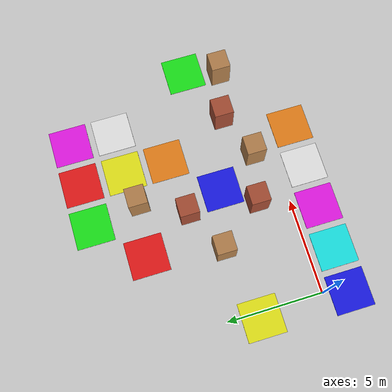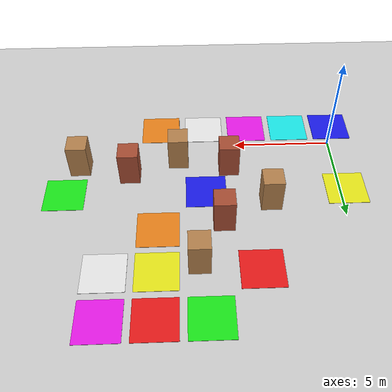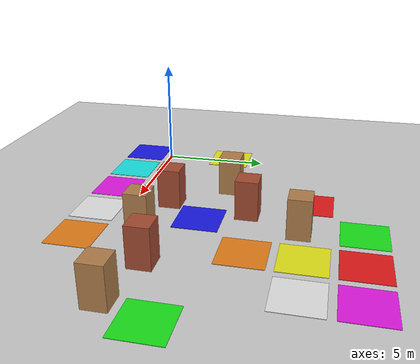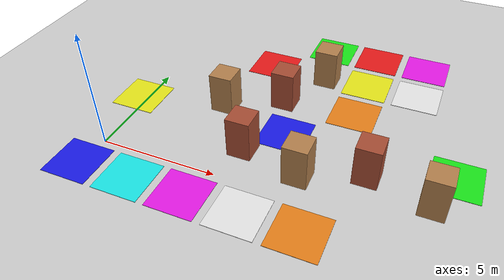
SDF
<?xml version="1.0" ?>
<sdf version="1.5">
  <world name="default">

    <include><uri>model://sun</uri></include>
    <include><uri>model://ground_plane</uri></include>
    <include><uri>model://asphalt_plane</uri></include>
    <physics name="default_physics" default="0" type="ode">
      <gravity>0 0 -9.8066</gravity>
      <ode>
        <solver>
          <type>quick</type>
          <iters>10</iters>
          <sor>1.3</sor>
          <use_dynamic_moi_rescaling>0</use_dynamic_moi_rescaling>
        </solver>
        <constraints>
          <cfm>0</cfm>
          <erp>0.2</erp>
          <contact_max_correcting_vel>100</contact_max_correcting_vel>
          <contact_surface_layer>0.001</contact_surface_layer>
        </constraints>
      </ode>
      <max_step_size>0.004</max_step_size>
      <real_time_factor>1</real_time_factor>
      <real_time_update_rate>250</real_time_update_rate>
    </physics>
    <scene>
      <ambient>0.4 0.4 0.4 1</ambient>
      <background>0.7 0.7 0.7 1</background>
      <shadows>0</shadows>
    </scene>

    <model name="cB1">
      <pose>5.467 1.717 0.9 0 0 0</pose>
      <static>true</static>
      <link name="link">
        <collision name="collision"><geometry><box><size>1.0 1.0 1.8</size></box></geometry></collision>
        <visual name="visual">
          <geometry><box><size>1.0 1.0 1.8</size></box></geometry>
          <material><script><name>Gazebo/Bricks</name><uri>file://media/materials/scripts/gazebo.material</uri><uri>file://media/materials/textures</uri></script></material>
        </visual>
      </link>
    </model>

    <model name="cB2">
      <pose>8.020 1.107 0.9 0 0 0</pose>
      <static>true</static>
      <link name="link">
        <collision name="collision"><geometry><box><size>1.0 1.0 1.8</size></box></geometry></collision>
        <visual name="visual">
          <geometry><box><size>1.0 1.0 1.8</size></box></geometry>
          <material><script><name>Gazebo/Wood</name><uri>file://media/materials/scripts/gazebo.material</uri><uri>file://media/materials/textures</uri></script></material>
        </visual>
      </link>
    </model>

    <model name="cB3">
      <pose>10.453 2.092 0.9 0 0 0</pose>
      <static>true</static>
      <link name="link">
        <collision name="collision"><geometry><box><size>1.0 1.0 1.8</size></box></geometry></collision>
        <visual name="visual">
          <geometry><box><size>1.0 1.0 1.8</size></box></geometry>
          <material><script><name>Gazebo/Bricks</name><uri>file://media/materials/scripts/gazebo.material</uri><uri>file://media/materials/textures</uri></script></material>
        </visual>
      </link>
    </model>

    <model name="cB4">
      <pose>13.006 1.482 0.9 0 0 0</pose>
      <static>true</static>
      <link name="link">
        <collision name="collision"><geometry><box><size>1.0 1.0 1.8</size></box></geometry></collision>
        <visual name="visual">
          <geometry><box><size>1.0 1.0 1.8</size></box></geometry>
          <material><script><name>Gazebo/Wood</name><uri>file://media/materials/scripts/gazebo.material</uri><uri>file://media/materials/textures</uri></script></material>
        </visual>
      </link>
    </model>

    <model name="cN1">
      <pose>3.561 4.087 0.9 0 0 0</pose>
      <static>true</static>
      <link name="link">
        <collision name="collision"><geometry><box><size>1.0 1.0 1.8</size></box></geometry></collision>
        <visual name="visual">
          <geometry><box><size>1.0 1.0 1.8</size></box></geometry>
          <material><script><name>Gazebo/Wood</name><uri>file://media/materials/scripts/gazebo.material</uri><uri>file://media/materials/textures</uri></script></material>
        </visual>
      </link>
    </model>

    <model name="cN2">
      <pose>5.896 5.286 0.9 0 0 0</pose>
      <static>true</static>
      <link name="link">
        <collision name="collision"><geometry><box><size>1.0 1.0 1.8</size></box></geometry></collision>
        <visual name="visual">
          <geometry><box><size>1.0 1.0 1.8</size></box></geometry>
          <material><script><name>Gazebo/Bricks</name><uri>file://media/materials/scripts/gazebo.material</uri><uri>file://media/materials/textures</uri></script></material>
        </visual>
      </link>
    </model>

    <model name="cN3">
      <pose>7.102 7.617 0.9 0 0 0</pose>
      <static>true</static>
      <link name="link">
        <collision name="collision"><geometry><box><size>1.0 1.0 1.8</size></box></geometry></collision>
        <visual name="visual">
          <geometry><box><size>1.0 1.0 1.8</size></box></geometry>
          <material><script><name>Gazebo/Wood</name><uri>file://media/materials/scripts/gazebo.material</uri><uri>file://media/materials/textures</uri></script></material>
        </visual>
      </link>
    </model>

    <model name="slab_01">
      <pose>8.990 7.940 0.02 0 0 0</pose>
      <static>true</static>
      <link name="link">
        <visual name="visual"><geometry><box><size>2.00 2.00 0.02</size></box></geometry>
          <material><ambient>0.9 0.9 0.1 1</ambient><diffuse>0.9 0.9 0.1 1</diffuse></material>
        </visual>
      </link>
    </model>

    <model name="slab_02">
      <pose>11.310 10.260 0.02 0 0 0</pose>
      <static>true</static>
      <link name="link">
        <visual name="visual"><geometry><box><size>2.00 2.00 0.02</size></box></geometry>
          <material><ambient>0.9 0.1 0.9 1</ambient><diffuse>0.9 0.1 0.9 1</diffuse></material>
        </visual>
      </link>
    </model>

    <model name="slab_03">
      <pose>8.990 10.260 0.02 0 0 0</pose>
      <static>true</static>
      <link name="link">
        <visual name="visual"><geometry><box><size>2.00 2.00 0.02</size></box></geometry>
          <material><ambient>0.9 0.1 0.1 1</ambient><diffuse>0.9 0.1 0.1 1</diffuse></material>
        </visual>
      </link>
    </model>

    <model name="slab_04">
      <pose>13.630 3.300 0.02 0 0 0</pose>
      <static>true</static>
      <link name="link">
        <visual name="visual"><geometry><box><size>2.00 2.00 0.02</size></box></geometry>
          <material><ambient>0.1 0.9 0.1 1</ambient><diffuse>0.1 0.9 0.1 1</diffuse></material>
        </visual>
      </link>
    </model>

    <model name="slab_05">
      <pose>6.670 3.300 0.02 0 0 0</pose>
      <static>true</static>
      <link name="link">
        <visual name="visual"><geometry><box><size>2.00 2.00 0.02</size></box></geometry>
          <material><ambient>0.1 0.1 0.9 1</ambient><diffuse>0.1 0.1 0.9 1</diffuse></material>
        </visual>
      </link>
    </model>

    <model name="slab_06">
      <pose>11.310 7.940 0.02 0 0 0</pose>
      <static>true</static>
      <link name="link">
        <visual name="visual"><geometry><box><size>2.00 2.00 0.02</size></box></geometry>
          <material><ambient>0.9 0.9 0.9 1</ambient><diffuse>0.9 0.9 0.9 1</diffuse></material>
        </visual>
      </link>
    </model>

    <model name="slab_07">
      <pose>8.990 5.620 0.02 0 0 0</pose>
      <static>true</static>
      <link name="link">
        <visual name="visual"><geometry><box><size>2.00 2.00 0.02</size></box></geometry>
          <material><ambient>0.9 0.5 0.1 1</ambient><diffuse>0.9 0.5 0.1 1</diffuse></material>
        </visual>
      </link>
    </model>

    <model name="slab_08">
      <pose>2.030 -1.340 0.02 0 0 0</pose>
      <static>true</static>
      <link name="link">
        <visual name="visual"><geometry><box><size>2.00 2.00 0.02</size></box></geometry>
          <material><ambient>0.1 0.9 0.9 1</ambient><diffuse>0.1 0.9 0.9 1</diffuse></material>
        </visual>
      </link>
    </model>

    <model name="slab_09">
      <pose>-0.290 3.300 0.02 0 0 0</pose>
      <static>true</static>
      <link name="link">
        <visual name="visual"><geometry><box><size>2.00 2.00 0.02</size></box></geometry>
          <material><ambient>0.9 0.9 0.1 1</ambient><diffuse>0.9 0.9 0.1 1</diffuse></material>
        </visual>
      </link>
    </model>

    <model name="slab_10">
      <pose>4.350 -1.340 0.02 0 0 0</pose>
      <static>true</static>
      <link name="link">
        <visual name="visual"><geometry><box><size>2.00 2.00 0.02</size></box></geometry>
          <material><ambient>0.9 0.1 0.9 1</ambient><diffuse>0.9 0.1 0.9 1</diffuse></material>
        </visual>
      </link>
    </model>

    <model name="slab_11">
      <pose>4.350 7.940 0.02 0 0 0</pose>
      <static>true</static>
      <link name="link">
        <visual name="visual"><geometry><box><size>2.00 2.00 0.02</size></box></geometry>
          <material><ambient>0.9 0.1 0.1 1</ambient><diffuse>0.9 0.1 0.1 1</diffuse></material>
        </visual>
      </link>
    </model>

    <model name="slab_12">
      <pose>6.670 10.260 0.02 0 0 0</pose>
      <static>true</static>
      <link name="link">
        <visual name="visual"><geometry><box><size>2.00 2.00 0.02</size></box></geometry>
          <material><ambient>0.1 0.9 0.1 1</ambient><diffuse>0.1 0.9 0.1 1</diffuse></material>
        </visual>
      </link>
    </model>

    <model name="slab_13">
      <pose>-0.290 -1.340 0.02 0 0 0</pose>
      <static>true</static>
      <link name="link">
        <visual name="visual"><geometry><box><size>2.00 2.00 0.02</size></box></geometry>
          <material><ambient>0.1 0.1 0.9 1</ambient><diffuse>0.1 0.1 0.9 1</diffuse></material>
        </visual>
      </link>
    </model>

    <model name="slab_14">
      <pose>6.670 -1.340 0.02 0 0 0</pose>
      <static>true</static>
      <link name="link">
        <visual name="visual"><geometry><box><size>2.00 2.00 0.02</size></box></geometry>
          <material><ambient>0.9 0.9 0.9 1</ambient><diffuse>0.9 0.9 0.9 1</diffuse></material>
        </visual>
      </link>
    </model>

    <model name="slab_15">
      <pose>8.990 -1.340 0.02 0 0 0</pose>
      <static>true</static>
      <link name="link">
        <visual name="visual"><geometry><box><size>2.00 2.00 0.02</size></box></geometry>
          <material><ambient>0.9 0.5 0.1 1</ambient><diffuse>0.9 0.5 0.1 1</diffuse></material>
        </visual>
      </link>
    </model>

  </world>
</sdf>
